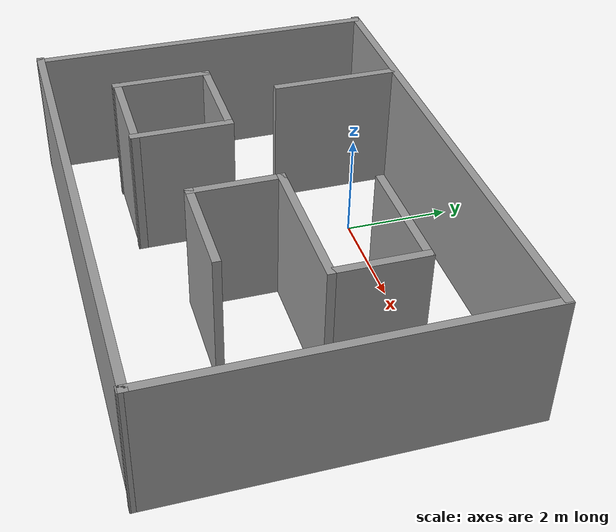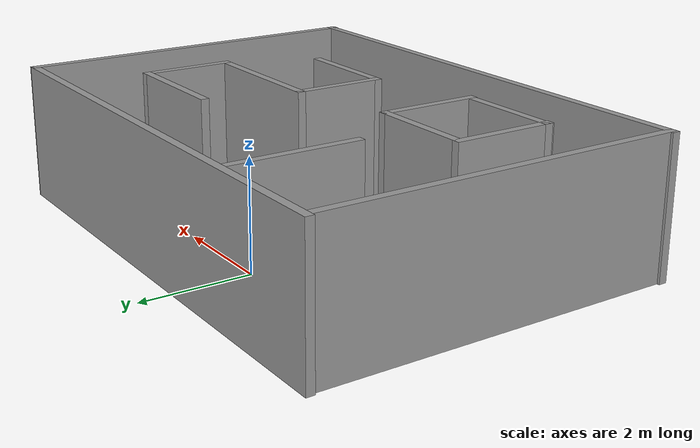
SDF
<?xml version='1.0'?>
<sdf version='1.6'>
  <model name='my_map'>
    <pose frame=''>0.863694 -1.94626 0 0 -0 0</pose>
    <link name='Wall_0'>
      <collision name='Wall_0_Collision'>
        <geometry>
          <box>
            <size>9.43601 0.15 2.5</size>
          </box>
        </geometry>
        <pose frame=''>0 0 1.25 0 -0 0</pose>
      </collision>
      <visual name='Wall_0_Visual'>
        <pose frame=''>0 0 1.25 0 -0 0</pose>
        <geometry>
          <box>
            <size>9.43601 0.15 2.5</size>
          </box>
        </geometry>
        <material>
          <script>
            <uri>file://media/materials/scripts/gazebo.material</uri>
            <name>Gazebo/Grey</name>
          </script>
          <ambient>1 1 1 1</ambient>
        </material>
        <meta>
          <layer>0</layer>
        </meta>
      </visual>
      <pose frame=''>-0.0133 3.30088 0 0 -0 0</pose>
    </link>
    <link name='Wall_1'>
      <collision name='Wall_1_Collision'>
        <geometry>
          <box>
            <size>6.75157 0.15 2.5</size>
          </box>
        </geometry>
        <pose frame=''>0 0 1.25 0 -0 0</pose>
      </collision>
      <visual name='Wall_1_Visual'>
        <pose frame=''>0 0 1.25 0 -0 0</pose>
        <geometry>
          <box>
            <size>6.75157 0.15 2.5</size>
          </box>
        </geometry>
        <material>
          <script>
            <uri>file://media/materials/scripts/gazebo.material</uri>
            <name>Gazebo/Grey</name>
          </script>
          <ambient>1 1 1 1</ambient>
        </material>
        <meta>
          <layer>0</layer>
        </meta>
      </visual>
      <pose frame=''>4.65631 9.3e-05 0 0 -0 -1.5708</pose>
    </link>
    <link name='Wall_10'>
      <collision name='Wall_10_Collision'>
        <geometry>
          <box>
            <size>1.75 0.15 2.5</size>
          </box>
        </geometry>
        <pose frame=''>0 0 1.25 0 -0 0</pose>
      </collision>
      <visual name='Wall_10_Visual'>
        <pose frame=''>0 0 1.25 0 -0 0</pose>
        <geometry>
          <box>
            <size>1.75 0.15 2.5</size>
          </box>
        </geometry>
        <material>
          <script>
            <uri>file://media/materials/scripts/gazebo.material</uri>
            <name>Gazebo/Grey</name>
          </script>
          <ambient>1 1 1 1</ambient>
        </material>
        <meta>
          <layer>0</layer>
        </meta>
      </visual>
      <pose frame=''>3.08812 0.963122 0 0 -0 -1.5708</pose>
    </link>
    <link name='Wall_11'>
      <collision name='Wall_11_Collision'>
        <geometry>
          <box>
            <size>2.75 0.15 2.5</size>
          </box>
        </geometry>
        <pose frame=''>0 0 1.25 0 -0 0</pose>
      </collision>
      <visual name='Wall_11_Visual'>
        <pose frame=''>0 0 1.25 0 -0 0</pose>
        <geometry>
          <box>
            <size>2.75 0.15 2.5</size>
          </box>
        </geometry>
        <material>
          <script>
            <uri>file://media/materials/scripts/gazebo.material</uri>
            <name>Gazebo/Grey</name>
          </script>
          <ambient>1 1 1 1</ambient>
        </material>
        <meta>
          <layer>0</layer>
        </meta>
      </visual>
      <pose frame=''>1.78812 0.163122 0 0 -0 3.14159</pose>
    </link>
    <link name='Wall_12'>
      <collision name='Wall_12_Collision'>
        <geometry>
          <box>
            <size>1.75 0.15 2.5</size>
          </box>
        </geometry>
        <pose frame=''>0 0 1.25 0 -0 0</pose>
      </collision>
      <visual name='Wall_12_Visual'>
        <pose frame=''>0 0 1.25 0 -0 0</pose>
        <geometry>
          <box>
            <size>1.75 0.15 2.5</size>
          </box>
        </geometry>
        <material>
          <script>
            <uri>file://media/materials/scripts/gazebo.material</uri>
            <name>Gazebo/Grey</name>
          </script>
          <ambient>1 1 1 1</ambient>
        </material>
        <meta>
          <layer>0</layer>
        </meta>
      </visual>
      <pose frame=''>0.488124 -0.636878 0 0 -0 -1.5708</pose>
    </link>
    <link name='Wall_13'>
      <collision name='Wall_13_Collision'>
        <geometry>
          <box>
            <size>2 0.15 2.5</size>
          </box>
        </geometry>
        <pose frame=''>0 0 1.25 0 -0 0</pose>
      </collision>
      <visual name='Wall_13_Visual'>
        <pose frame=''>0 0 1.25 0 -0 0</pose>
        <geometry>
          <box>
            <size>2 0.15 2.5</size>
          </box>
        </geometry>
        <material>
          <script>
            <uri>file://media/materials/scripts/gazebo.material</uri>
            <name>Gazebo/Grey</name>
          </script>
          <ambient>1 1 1 1</ambient>
        </material>
        <meta>
          <layer>0</layer>
        </meta>
      </visual>
      <pose frame=''>1.41312 -1.43688 0 0 -0 0</pose>
    </link>
    <link name='Wall_15'>
      <collision name='Wall_15_Collision'>
        <geometry>
          <box>
            <size>2 0.15 2.5</size>
          </box>
        </geometry>
        <pose frame=''>0 0 1.25 0 -0 0</pose>
      </collision>
      <visual name='Wall_15_Visual'>
        <pose frame=''>0 0 1.25 0 -0 0</pose>
        <geometry>
          <box>
            <size>2 0.15 2.5</size>
          </box>
        </geometry>
        <material>
          <script>
            <uri>file://media/materials/scripts/gazebo.material</uri>
            <name>Gazebo/Grey</name>
          </script>
          <ambient>1 1 1 1</ambient>
        </material>
        <meta>
          <layer>0</layer>
        </meta>
      </visual>
      <pose frame=''>-2.33498 -0.272372 0 0 -0 0</pose>
    </link>
    <link name='Wall_16'>
      <collision name='Wall_16_Collision'>
        <geometry>
          <box>
            <size>1.90748 0.15 2.5</size>
          </box>
        </geometry>
        <pose frame=''>0 0 1.25 0 -0 0</pose>
      </collision>
      <visual name='Wall_16_Visual'>
        <pose frame=''>0 0 1.25 0 -0 0</pose>
        <geometry>
          <box>
            <size>1.90748 0.15 2.5</size>
          </box>
        </geometry>
        <material>
          <script>
            <uri>file://media/materials/scripts/gazebo.material</uri>
            <name>Gazebo/Grey</name>
          </script>
          <ambient>1 1 1 1</ambient>
        </material>
        <meta>
          <layer>0</layer>
        </meta>
      </visual>
      <pose frame=''>-1.40998 -1.15111 0 0 -0 -1.5708</pose>
    </link>
    <link name='Wall_17'>
      <collision name='Wall_17_Collision'>
        <geometry>
          <box>
            <size>2 0.15 2.5</size>
          </box>
        </geometry>
        <pose frame=''>0 0 1.25 0 -0 0</pose>
      </collision>
      <visual name='Wall_17_Visual'>
        <pose frame=''>0 0 1.25 0 -0 0</pose>
        <geometry>
          <box>
            <size>2 0.15 2.5</size>
          </box>
        </geometry>
        <material>
          <script>
            <uri>file://media/materials/scripts/gazebo.material</uri>
            <name>Gazebo/Grey</name>
          </script>
          <ambient>1 1 1 1</ambient>
        </material>
        <meta>
          <layer>0</layer>
        </meta>
      </visual>
      <pose frame=''>-2.33498 -2.00672 0 0 -0 3.14159</pose>
    </link>
    <link name='Wall_18'>
      <collision name='Wall_18_Collision'>
        <geometry>
          <box>
            <size>1.90748 0.15 2.5</size>
          </box>
        </geometry>
        <pose frame=''>0 0 1.25 0 -0 0</pose>
      </collision>
      <visual name='Wall_18_Visual'>
        <pose frame=''>0 0 1.25 0 -0 0</pose>
        <geometry>
          <box>
            <size>1.90748 0.15 2.5</size>
          </box>
        </geometry>
        <material>
          <script>
            <uri>file://media/materials/scripts/gazebo.material</uri>
            <name>Gazebo/Grey</name>
          </script>
          <ambient>1 1 1 1</ambient>
        </material>
        <meta>
          <layer>0</layer>
        </meta>
      </visual>
      <pose frame=''>-3.25998 -1.15111 0 0 -0 1.5708</pose>
    </link>
    <link name='Wall_2'>
      <collision name='Wall_2_Collision'>
        <geometry>
          <box>
            <size>9.46264 0.15 2.5</size>
          </box>
        </geometry>
        <pose frame=''>0 0 1.25 0 -0 0</pose>
      </collision>
      <visual name='Wall_2_Visual'>
        <pose frame=''>0 0 1.25 0 -0 0</pose>
        <geometry>
          <box>
            <size>9.46264 0.15 2.5</size>
          </box>
        </geometry>
        <material>
          <script>
            <uri>file://media/materials/scripts/gazebo.material</uri>
            <name>Gazebo/Grey</name>
          </script>
          <ambient>1 1 1 1</ambient>
        </material>
        <meta>
          <layer>0</layer>
        </meta>
      </visual>
      <pose frame=''>-0 -3.28913 0 0 -0 -3.13911</pose>
    </link>
    <link name='Wall_3'>
      <collision name='Wall_3_Collision'>
        <geometry>
          <box>
            <size>6.75157 0.15 2.5</size>
          </box>
        </geometry>
        <pose frame=''>0 0 1.25 0 -0 0</pose>
      </collision>
      <visual name='Wall_3_Visual'>
        <pose frame=''>0 0 1.25 0 -0 0</pose>
        <geometry>
          <box>
            <size>6.75157 0.15 2.5</size>
          </box>
        </geometry>
        <material>
          <script>
            <uri>file://media/materials/scripts/gazebo.material</uri>
            <name>Gazebo/Grey</name>
          </script>
          <ambient>1 1 1 1</ambient>
        </material>
        <meta>
          <layer>0</layer>
        </meta>
      </visual>
      <pose frame=''>-4.61005 9.3e-05 0 0 -0 1.5708</pose>
    </link>
    <link name='Wall_6'>
      <collision name='Wall_6_Collision'>
        <geometry>
          <box>
            <size>2.5 0.15 2.5</size>
          </box>
        </geometry>
        <pose frame=''>0 0 1.25 0 -0 0</pose>
      </collision>
      <visual name='Wall_6_Visual'>
        <pose frame=''>0 0 1.25 0 -0 0</pose>
        <geometry>
          <box>
            <size>2.5 0.15 2.5</size>
          </box>
        </geometry>
        <material>
          <script>
            <uri>file://media/materials/scripts/gazebo.material</uri>
            <name>Gazebo/Grey</name>
          </script>
          <ambient>1 1 1 1</ambient>
        </material>
        <meta>
          <layer>0</layer>
        </meta>
      </visual>
      <pose frame=''>-2.38102 2.11474 0 0 -0 -1.5708</pose>
    </link>
    <link name='Wall_8'>
      <collision name='Wall_8_Collision'>
        <geometry>
          <box>
            <size>2.25 0.15 2.5</size>
          </box>
        </geometry>
        <pose frame=''>0 0 1.25 0 -0 0</pose>
      </collision>
      <visual name='Wall_8_Visual'>
        <pose frame=''>0 0 1.25 0 -0 0</pose>
        <geometry>
          <box>
            <size>2.25 0.15 2.5</size>
          </box>
        </geometry>
        <material>
          <script>
            <uri>file://media/materials/scripts/gazebo.material</uri>
            <name>Gazebo/Grey</name>
          </script>
          <ambient>1 1 1 1</ambient>
        </material>
        <meta>
          <layer>0</layer>
        </meta>
      </visual>
      <pose frame=''>2.03812 1.76312 0 0 -0 0</pose>
    </link>
    <static>1</static>
  </model>
</sdf>
